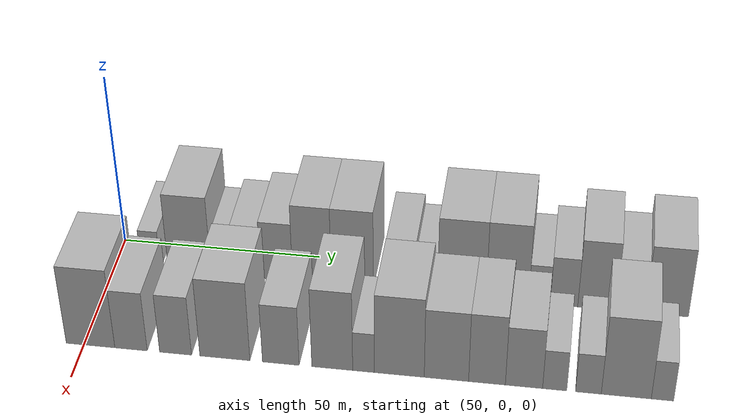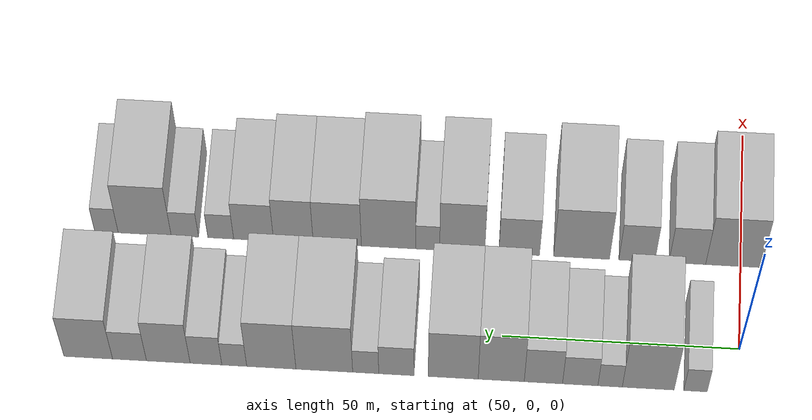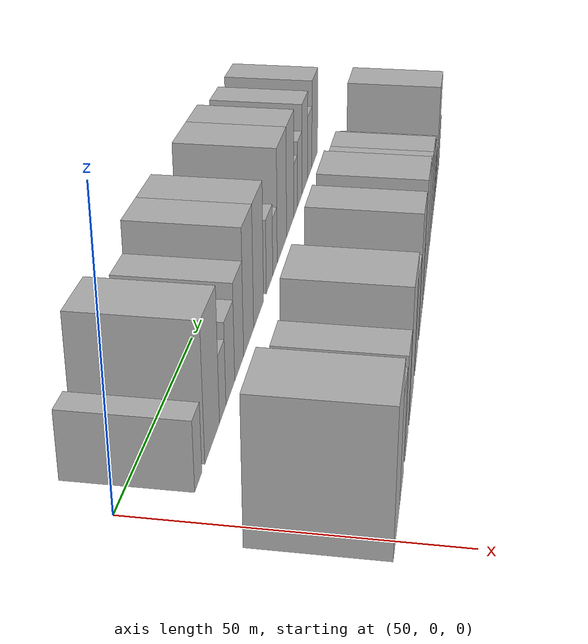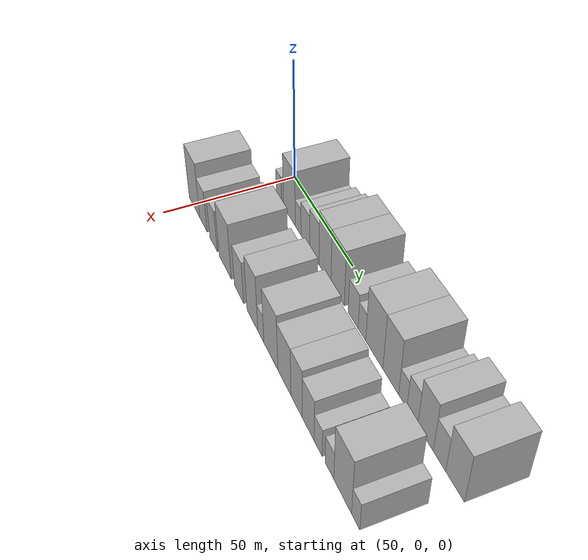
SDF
<sdf version="1.6">
 <world name="default">
  <model name="building_32">
   <static>1</static>
   <pose>50.0000 9.0970 0 0.000000 0.000000 0.000000</pose>
   <link name="link">
    <pose>0 0 6.00 0 0 0</pose>
    <collision name="collision"><geometry><box><size>20.0000 4.8899 12.0000</size></box></geometry></collision>
    <visual name="visual">
     <cast_shadows>0</cast_shadows>
     <geometry><box><size>20.0000 4.8899 12.0000</size></box></geometry>
     <material>
      <script>
       <uri>model://HANNAS_wall/materials/scripts</uri>
       <uri>model://HANNAS_wall/materials/textures</uri>
       <name>vrc/HANNAS_wall</name>
      </script>
     </material>
    </visual>
   </link>
  </model>
  <model name="building_33">
   <static>1</static>
   <pose>50.0000 18.9755 0 0.000000 0.000000 0.000000</pose>
   <link name="link">
    <pose>0 0 12.00 0 0 0</pose>
    <collision name="collision"><geometry><box><size>20.0000 10.8672 24.0000</size></box></geometry></collision>
    <visual name="visual">
     <cast_shadows>0</cast_shadows>
     <geometry><box><size>20.0000 10.8672 24.0000</size></box></geometry>
     <material>
      <script>
       <uri>model://HANNAS_wall/materials/scripts</uri>
       <uri>model://HANNAS_wall/materials/textures</uri>
       <name>vrc/HANNAS_wall</name>
      </script>
     </material>
    </visual>
   </link>
  </model>
  <model name="building_34">
   <static>1</static>
   <pose>50.0000 26.9637 0 0.000000 0.000000 0.000000</pose>
   <link name="link">
    <pose>0 0 6.00 0 0 0</pose>
    <collision name="collision"><geometry><box><size>20.0000 5.1092 12.0000</size></box></geometry></collision>
    <visual name="visual">
     <cast_shadows>0</cast_shadows>
     <geometry><box><size>20.0000 5.1092 12.0000</size></box></geometry>
     <material>
      <script>
       <uri>model://HANNAS_wall/materials/scripts</uri>
       <uri>model://HANNAS_wall/materials/textures</uri>
       <name>vrc/HANNAS_wall</name>
      </script>
     </material>
    </visual>
   </link>
  </model>
  <model name="building_35">
   <static>1</static>
   <pose>50.0000 33.2226 0 0.000000 0.000000 0.000000</pose>
   <link name="link">
    <pose>0 0 7.50 0 0 0</pose>
    <collision name="collision"><geometry><box><size>20.0000 7.4086 15.0000</size></box></geometry></collision>
    <visual name="visual">
     <cast_shadows>0</cast_shadows>
     <geometry><box><size>20.0000 7.4086 15.0000</size></box></geometry>
     <material>
      <script>
       <uri>model://HANNAS_wall/materials/scripts</uri>
       <uri>model://HANNAS_wall/materials/textures</uri>
       <name>vrc/HANNAS_wall</name>
      </script>
     </material>
    </visual>
   </link>
  </model>
  <model name="building_36">
   <static>1</static>
   <pose>50.0000 40.9355 0 0.000000 0.000000 0.000000</pose>
   <link name="link">
    <pose>0 0 9.00 0 0 0</pose>
    <collision name="collision"><geometry><box><size>20.0000 8.0170 18.0000</size></box></geometry></collision>
    <visual name="visual">
     <cast_shadows>0</cast_shadows>
     <geometry><box><size>20.0000 8.0170 18.0000</size></box></geometry>
     <material>
      <script>
       <uri>model://HANNAS_wall/materials/scripts</uri>
       <uri>model://HANNAS_wall/materials/textures</uri>
       <name>vrc/HANNAS_wall</name>
      </script>
     </material>
    </visual>
   </link>
  </model>
  <model name="building_37">
   <static>1</static>
   <pose>50.0000 49.7665 0 0.000000 0.000000 0.000000</pose>
   <link name="link">
    <pose>0 0 12.00 0 0 0</pose>
    <collision name="collision"><geometry><box><size>20.0000 9.6450 24.0000</size></box></geometry></collision>
    <visual name="visual">
     <cast_shadows>0</cast_shadows>
     <geometry><box><size>20.0000 9.6450 24.0000</size></box></geometry>
     <material>
      <script>
       <uri>model://HANNAS_wall/materials/scripts</uri>
       <uri>model://HANNAS_wall/materials/textures</uri>
       <name>vrc/HANNAS_wall</name>
      </script>
     </material>
    </visual>
   </link>
  </model>
  <model name="building_38">
   <static>1</static>
   <pose>50.0000 59.8280 0 0.000000 0.000000 0.000000</pose>
   <link name="link">
    <pose>0 0 12.00 0 0 0</pose>
    <collision name="collision"><geometry><box><size>20.0000 10.4779 24.0000</size></box></geometry></collision>
    <visual name="visual">
     <cast_shadows>0</cast_shadows>
     <geometry><box><size>20.0000 10.4779 24.0000</size></box></geometry>
     <material>
      <script>
       <uri>model://HANNAS_wall/materials/scripts</uri>
       <uri>model://HANNAS_wall/materials/textures</uri>
       <name>vrc/HANNAS_wall</name>
      </script>
     </material>
    </visual>
   </link>
  </model>
  <model name="building_39">
   <static>1</static>
   <pose>50.0000 71.7686 0 0.000000 0.000000 0.000000</pose>
   <link name="link">
    <pose>0 0 7.50 0 0 0</pose>
    <collision name="collision"><geometry><box><size>20.0000 7.4033 15.0000</size></box></geometry></collision>
    <visual name="visual">
     <cast_shadows>0</cast_shadows>
     <geometry><box><size>20.0000 7.4033 15.0000</size></box></geometry>
     <material>
      <script>
       <uri>model://HANNAS_wall/materials/scripts</uri>
       <uri>model://HANNAS_wall/materials/textures</uri>
       <name>vrc/HANNAS_wall</name>
      </script>
     </material>
    </visual>
   </link>
  </model>
  <model name="building_40">
   <static>1</static>
   <pose>50.0000 78.2085 0 0.000000 0.000000 0.000000</pose>
   <link name="link">
    <pose>0 0 6.00 0 0 0</pose>
    <collision name="collision"><geometry><box><size>20.0000 5.4766 12.0000</size></box></geometry></collision>
    <visual name="visual">
     <cast_shadows>0</cast_shadows>
     <geometry><box><size>20.0000 5.4766 12.0000</size></box></geometry>
     <material>
      <script>
       <uri>model://HANNAS_wall/materials/scripts</uri>
       <uri>model://HANNAS_wall/materials/textures</uri>
       <name>vrc/HANNAS_wall</name>
      </script>
     </material>
    </visual>
   </link>
  </model>
  <model name="building_41">
   <static>1</static>
   <pose>50.0000 86.9091 0 0.000000 0.000000 0.000000</pose>
   <link name="link">
    <pose>0 0 12.00 0 0 0</pose>
    <collision name="collision"><geometry><box><size>20.0000 11.9245 24.0000</size></box></geometry></collision>
    <visual name="visual">
     <cast_shadows>0</cast_shadows>
     <geometry><box><size>20.0000 11.9245 24.0000</size></box></geometry>
     <material>
      <script>
       <uri>model://HANNAS_wall/materials/scripts</uri>
       <uri>model://HANNAS_wall/materials/textures</uri>
       <name>vrc/HANNAS_wall</name>
      </script>
     </material>
    </visual>
   </link>
  </model>
  <model name="building_42">
   <static>1</static>
   <pose>50.0000 98.0518 0 0.000000 0.000000 0.000000</pose>
   <link name="link">
    <pose>0 0 12.00 0 0 0</pose>
    <collision name="collision"><geometry><box><size>20.0000 10.3611 24.0000</size></box></geometry></collision>
    <visual name="visual">
     <cast_shadows>0</cast_shadows>
     <geometry><box><size>20.0000 10.3611 24.0000</size></box></geometry>
     <material>
      <script>
       <uri>model://HANNAS_wall/materials/scripts</uri>
       <uri>model://HANNAS_wall/materials/textures</uri>
       <name>vrc/HANNAS_wall</name>
      </script>
     </material>
    </visual>
   </link>
  </model>
  <model name="building_43">
   <static>1</static>
   <pose>50.0000 105.8520 0 0.000000 0.000000 0.000000</pose>
   <link name="link">
    <pose>0 0 6.00 0 0 0</pose>
    <collision name="collision"><geometry><box><size>20.0000 5.2392 12.0000</size></box></geometry></collision>
    <visual name="visual">
     <cast_shadows>0</cast_shadows>
     <geometry><box><size>20.0000 5.2392 12.0000</size></box></geometry>
     <material>
      <script>
       <uri>model://HANNAS_wall/materials/scripts</uri>
       <uri>model://HANNAS_wall/materials/textures</uri>
       <name>vrc/HANNAS_wall</name>
      </script>
     </material>
    </visual>
   </link>
  </model>
  <model name="building_44">
   <static>1</static>
   <pose>50.0000 111.8067 0 0.000000 0.000000 0.000000</pose>
   <link name="link">
    <pose>0 0 7.50 0 0 0</pose>
    <collision name="collision"><geometry><box><size>20.0000 6.6703 15.0000</size></box></geometry></collision>
    <visual name="visual">
     <cast_shadows>0</cast_shadows>
     <geometry><box><size>20.0000 6.6703 15.0000</size></box></geometry>
     <material>
      <script>
       <uri>model://HANNAS_wall/materials/scripts</uri>
       <uri>model://HANNAS_wall/materials/textures</uri>
       <name>vrc/HANNAS_wall</name>
      </script>
     </material>
    </visual>
   </link>
  </model>
  <model name="building_45">
   <static>1</static>
   <pose>50.0000 119.7450 0 0.000000 0.000000 0.000000</pose>
   <link name="link">
    <pose>0 0 10.50 0 0 0</pose>
    <collision name="collision"><geometry><box><size>20.0000 9.2063 21.0000</size></box></geometry></collision>
    <visual name="visual">
     <cast_shadows>0</cast_shadows>
     <geometry><box><size>20.0000 9.2063 21.0000</size></box></geometry>
     <material>
      <script>
       <uri>model://HANNAS_wall/materials/scripts</uri>
       <uri>model://HANNAS_wall/materials/textures</uri>
       <name>vrc/HANNAS_wall</name>
      </script>
     </material>
    </visual>
   </link>
  </model>
  <model name="building_46">
   <static>1</static>
   <pose>50.0000 127.9250 0 0.000000 0.000000 0.000000</pose>
   <link name="link">
    <pose>0 0 7.50 0 0 0</pose>
    <collision name="collision"><geometry><box><size>20.0000 7.1537 15.0000</size></box></geometry></collision>
    <visual name="visual">
     <cast_shadows>0</cast_shadows>
     <geometry><box><size>20.0000 7.1537 15.0000</size></box></geometry>
     <material>
      <script>
       <uri>model://HANNAS_wall/materials/scripts</uri>
       <uri>model://HANNAS_wall/materials/textures</uri>
       <name>vrc/HANNAS_wall</name>
      </script>
     </material>
    </visual>
   </link>
  </model>
  <model name="building_47">
   <static>1</static>
   <pose>50.0000 136.6306 0 0.000000 0.000000 0.000000</pose>
   <link name="link">
    <pose>0 0 10.50 0 0 0</pose>
    <collision name="collision"><geometry><box><size>20.0000 10.2575 21.0000</size></box></geometry></collision>
    <visual name="visual">
     <cast_shadows>0</cast_shadows>
     <geometry><box><size>20.0000 10.2575 21.0000</size></box></geometry>
     <material>
      <script>
       <uri>model://HANNAS_wall/materials/scripts</uri>
       <uri>model://HANNAS_wall/materials/textures</uri>
       <name>vrc/HANNAS_wall</name>
      </script>
     </material>
    </visual>
   </link>
  </model>
  <model name="building_92">
   <static>1</static>
   <pose>79.0000 1.6401 0 0.000000 0.000000 0.000000</pose>
   <link name="link">
    <pose>0 0 12.00 0 0 0</pose>
    <collision name="collision"><geometry><box><size>20.0000 11.8028 24.0000</size></box></geometry></collision>
    <visual name="visual">
     <cast_shadows>0</cast_shadows>
     <geometry><box><size>20.0000 11.8028 24.0000</size></box></geometry>
     <material>
      <script>
       <uri>model://HANNAS_wall/materials/scripts</uri>
       <uri>model://HANNAS_wall/materials/textures</uri>
       <name>vrc/HANNAS_wall</name>
      </script>
     </material>
    </visual>
   </link>
  </model>
  <model name="building_93">
   <static>1</static>
   <pose>79.0000 11.4517 0 0.000000 0.000000 0.000000</pose>
   <link name="link">
    <pose>0 0 9.00 0 0 0</pose>
    <collision name="collision"><geometry><box><size>20.0000 7.8202 18.0000</size></box></geometry></collision>
    <visual name="visual">
     <cast_shadows>0</cast_shadows>
     <geometry><box><size>20.0000 7.8202 18.0000</size></box></geometry>
     <material>
      <script>
       <uri>model://HANNAS_wall/materials/scripts</uri>
       <uri>model://HANNAS_wall/materials/textures</uri>
       <name>vrc/HANNAS_wall</name>
      </script>
     </material>
    </visual>
   </link>
  </model>
  <model name="building_94">
   <static>1</static>
   <pose>79.0000 22.1962 0 0.000000 0.000000 0.000000</pose>
   <link name="link">
    <pose>0 0 9.00 0 0 0</pose>
    <collision name="collision"><geometry><box><size>20.0000 7.6688 18.0000</size></box></geometry></collision>
    <visual name="visual">
     <cast_shadows>0</cast_shadows>
     <geometry><box><size>20.0000 7.6688 18.0000</size></box></geometry>
     <material>
      <script>
       <uri>model://HANNAS_wall/materials/scripts</uri>
       <uri>model://HANNAS_wall/materials/textures</uri>
       <name>vrc/HANNAS_wall</name>
      </script>
     </material>
    </visual>
   </link>
  </model>
  <model name="building_95">
   <static>1</static>
   <pose>79.0000 34.0041 0 0.000000 0.000000 0.000000</pose>
   <link name="link">
    <pose>0 0 12.00 0 0 0</pose>
    <collision name="collision"><geometry><box><size>20.0000 11.9470 24.0000</size></box></geometry></collision>
    <visual name="visual">
     <cast_shadows>0</cast_shadows>
     <geometry><box><size>20.0000 11.9470 24.0000</size></box></geometry>
     <material>
      <script>
       <uri>model://HANNAS_wall/materials/scripts</uri>
       <uri>model://HANNAS_wall/materials/textures</uri>
       <name>vrc/HANNAS_wall</name>
      </script>
     </material>
    </visual>
   </link>
  </model>
  <model name="building_96">
   <static>1</static>
   <pose>79.0000 47.3220 0 0.000000 0.000000 0.000000</pose>
   <link name="link">
    <pose>0 0 9.00 0 0 0</pose>
    <collision name="collision"><geometry><box><size>20.0000 8.6887 18.0000</size></box></geometry></collision>
    <visual name="visual">
     <cast_shadows>0</cast_shadows>
     <geometry><box><size>20.0000 8.6887 18.0000</size></box></geometry>
     <material>
      <script>
       <uri>model://HANNAS_wall/materials/scripts</uri>
       <uri>model://HANNAS_wall/materials/textures</uri>
       <name>vrc/HANNAS_wall</name>
      </script>
     </material>
    </visual>
   </link>
  </model>
  <model name="building_97">
   <static>1</static>
   <pose>79.0000 59.4877 0 0.000000 0.000000 0.000000</pose>
   <link name="link">
    <pose>0 0 12.00 0 0 0</pose>
    <collision name="collision"><geometry><box><size>20.0000 9.6427 24.0000</size></box></geometry></collision>
    <visual name="visual">
     <cast_shadows>0</cast_shadows>
     <geometry><box><size>20.0000 9.6427 24.0000</size></box></geometry>
     <material>
      <script>
       <uri>model://HANNAS_wall/materials/scripts</uri>
       <uri>model://HANNAS_wall/materials/textures</uri>
       <name>vrc/HANNAS_wall</name>
      </script>
     </material>
    </visual>
   </link>
  </model>
  <model name="building_98">
   <static>1</static>
   <pose>79.0000 66.8623 0 0.000000 0.000000 0.000000</pose>
   <link name="link">
    <pose>0 0 6.00 0 0 0</pose>
    <collision name="collision"><geometry><box><size>20.0000 5.1063 12.0000</size></box></geometry></collision>
    <visual name="visual">
     <cast_shadows>0</cast_shadows>
     <geometry><box><size>20.0000 5.1063 12.0000</size></box></geometry>
     <material>
      <script>
       <uri>model://HANNAS_wall/materials/scripts</uri>
       <uri>model://HANNAS_wall/materials/textures</uri>
       <name>vrc/HANNAS_wall</name>
      </script>
     </material>
    </visual>
   </link>
  </model>
  <model name="building_99">
   <static>1</static>
   <pose>79.0000 75.2404 0 0.000000 0.000000 0.000000</pose>
   <link name="link">
    <pose>0 0 12.00 0 0 0</pose>
    <collision name="collision"><geometry><box><size>20.0000 11.6499 24.0000</size></box></geometry></collision>
    <visual name="visual">
     <cast_shadows>0</cast_shadows>
     <geometry><box><size>20.0000 11.6499 24.0000</size></box></geometry>
     <material>
      <script>
       <uri>model://HANNAS_wall/materials/scripts</uri>
       <uri>model://HANNAS_wall/materials/textures</uri>
       <name>vrc/HANNAS_wall</name>
      </script>
     </material>
    </visual>
   </link>
  </model>
  <model name="building_100">
   <static>1</static>
   <pose>79.0000 86.2169 0 0.000000 0.000000 0.000000</pose>
   <link name="link">
    <pose>0 0 10.50 0 0 0</pose>
    <collision name="collision"><geometry><box><size>20.0000 10.3030 21.0000</size></box></geometry></collision>
    <visual name="visual">
     <cast_shadows>0</cast_shadows>
     <geometry><box><size>20.0000 10.3030 21.0000</size></box></geometry>
     <material>
      <script>
       <uri>model://HANNAS_wall/materials/scripts</uri>
       <uri>model://HANNAS_wall/materials/textures</uri>
       <name>vrc/HANNAS_wall</name>
      </script>
     </material>
    </visual>
   </link>
  </model>
  <model name="building_101">
   <static>1</static>
   <pose>79.0000 95.6185 0 0.000000 0.000000 0.000000</pose>
   <link name="link">
    <pose>0 0 10.50 0 0 0</pose>
    <collision name="collision"><geometry><box><size>20.0000 8.5002 21.0000</size></box></geometry></collision>
    <visual name="visual">
     <cast_shadows>0</cast_shadows>
     <geometry><box><size>20.0000 8.5002 21.0000</size></box></geometry>
     <material>
      <script>
       <uri>model://HANNAS_wall/materials/scripts</uri>
       <uri>model://HANNAS_wall/materials/textures</uri>
       <name>vrc/HANNAS_wall</name>
      </script>
     </material>
    </visual>
   </link>
  </model>
  <model name="building_102">
   <static>1</static>
   <pose>79.0000 104.1567 0 0.000000 0.000000 0.000000</pose>
   <link name="link">
    <pose>0 0 9.00 0 0 0</pose>
    <collision name="collision"><geometry><box><size>20.0000 8.5762 18.0000</size></box></geometry></collision>
    <visual name="visual">
     <cast_shadows>0</cast_shadows>
     <geometry><box><size>20.0000 8.5762 18.0000</size></box></geometry>
     <material>
      <script>
       <uri>model://HANNAS_wall/materials/scripts</uri>
       <uri>model://HANNAS_wall/materials/textures</uri>
       <name>vrc/HANNAS_wall</name>
      </script>
     </material>
    </visual>
   </link>
  </model>
  <model name="building_103">
   <static>1</static>
   <pose>79.0000 111.2148 0 0.000000 0.000000 0.000000</pose>
   <link name="link">
    <pose>0 0 6.00 0 0 0</pose>
    <collision name="collision"><geometry><box><size>20.0000 5.5401 12.0000</size></box></geometry></collision>
    <visual name="visual">
     <cast_shadows>0</cast_shadows>
     <geometry><box><size>20.0000 5.5401 12.0000</size></box></geometry>
     <material>
      <script>
       <uri>model://HANNAS_wall/materials/scripts</uri>
       <uri>model://HANNAS_wall/materials/textures</uri>
       <name>vrc/HANNAS_wall</name>
      </script>
     </material>
    </visual>
   </link>
  </model>
  <model name="building_104">
   <static>1</static>
   <pose>79.0000 118.9209 0 0.000000 0.000000 0.000000</pose>
   <link name="link">
    <pose>0 0 6.00 0 0 0</pose>
    <collision name="collision"><geometry><box><size>20.0000 5.8721 12.0000</size></box></geometry></collision>
    <visual name="visual">
     <cast_shadows>0</cast_shadows>
     <geometry><box><size>20.0000 5.8721 12.0000</size></box></geometry>
     <material>
      <script>
       <uri>model://HANNAS_wall/materials/scripts</uri>
       <uri>model://HANNAS_wall/materials/textures</uri>
       <name>vrc/HANNAS_wall</name>
      </script>
     </material>
    </visual>
   </link>
  </model>
  <model name="building_105">
   <static>1</static>
   <pose>79.0000 127.5501 0 0.000000 0.000000 0.000000</pose>
   <link name="link">
    <pose>0 0 12.00 0 0 0</pose>
    <collision name="collision"><geometry><box><size>20.0000 11.3863 24.0000</size></box></geometry></collision>
    <visual name="visual">
     <cast_shadows>0</cast_shadows>
     <geometry><box><size>20.0000 11.3863 24.0000</size></box></geometry>
     <material>
      <script>
       <uri>model://HANNAS_wall/materials/scripts</uri>
       <uri>model://HANNAS_wall/materials/textures</uri>
       <name>vrc/HANNAS_wall</name>
      </script>
     </material>
    </visual>
   </link>
  </model>
  <model name="building_106">
   <static>1</static>
   <pose>79.0000 135.7757 0 0.000000 0.000000 0.000000</pose>
   <link name="link">
    <pose>0 0 6.00 0 0 0</pose>
    <collision name="collision"><geometry><box><size>20.0000 5.0648 12.0000</size></box></geometry></collision>
    <visual name="visual">
     <cast_shadows>0</cast_shadows>
     <geometry><box><size>20.0000 5.0648 12.0000</size></box></geometry>
     <material>
      <script>
       <uri>model://HANNAS_wall/materials/scripts</uri>
       <uri>model://HANNAS_wall/materials/textures</uri>
       <name>vrc/HANNAS_wall</name>
      </script>
     </material>
    </visual>
   </link>
  </model>
 </world>
</sdf>
